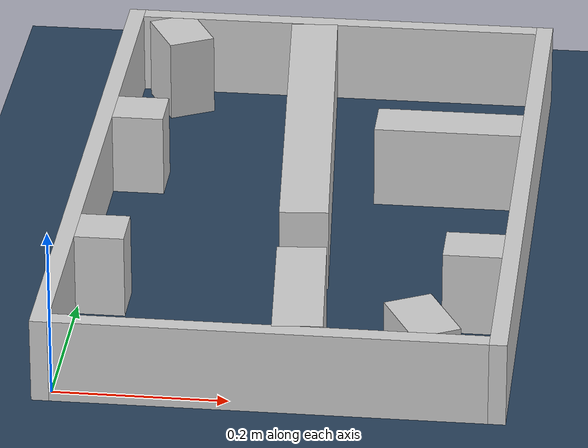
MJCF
<?xml version="1.0" ?>
<mujoco model="generated_real_template">
  <compiler angle="degree"/>
  <option timestep="0.002" integrator="implicitfast" iterations="100" cone="elliptic"/>
  <default>
    <geom density="1"/>
  </default>
  <asset>
    <texture builtin="gradient" height="3072" rgb1="0.3 0.5 0.7" rgb2="0 0 0" type="skybox" width="512"/>
    <texture builtin="checker" height="300" mark="edge" markrgb="0.8 0.8 0.8" name="groundplane" rgb1="0.2 0.3 0.4" rgb2="0.1 0.2 0.3" type="2d" width="300"/>
    <material name="groundplane" reflectance="0.2" texrepeat="5 5" texture="groundplane" texuniform="true"/>
  </asset>
  <worldbody>
    <light dir="0 0 -1" directional="true" pos="0 0 1.5"/>
    <geom name="floor" type="plane" condim="4" friction="0.5 0.005 0.001" material="groundplane" size="0 0 0.05"/>
    <body name="walls">
      <geom name="wall_boundary_left" type="box" condim="4" friction="1.0 0.005 0.0001" rgba="0.8 0.8 0.8 1" pos="-0.010000 0.387500 0.050000" euler="0 0 0.000000" size="0.010000 0.407500 0.050000"/>
      <geom name="wall_boundary_right" type="box" condim="4" friction="1.0 0.005 0.0001" rgba="0.8 0.8 0.8 1" pos="0.500000 0.387500 0.050000" euler="0 0 0.000000" size="0.010000 0.407500 0.050000"/>
      <geom name="wall_boundary_bottom" type="box" condim="4" friction="1.0 0.005 0.0001" rgba="0.8 0.8 0.8 1" pos="0.245000 -0.010000 0.050000" euler="0 0 0.000000" size="0.245000 0.010000 0.050000"/>
      <geom name="wall_boundary_top" type="box" condim="4" friction="1.0 0.005 0.0001" rgba="0.8 0.8 0.8 1" pos="0.245000 0.785000 0.050000" euler="0 0 0.000000" size="0.245000 0.010000 0.050000"/>
      <geom name="wall_inner_1_1" type="box" condim="4" friction="1.0 0.005 0.0001" rgba="0.8 0.8 0.8 1" pos="0.028628 0.211965 0.050000" euler="0 0 0.000000" size="0.028628 0.028500 0.050000"/>
      <geom name="wall_inner_1_2" type="box" condim="4" friction="1.0 0.005 0.0001" rgba="0.8 0.8 0.8 1" pos="0.456165 0.211965 0.050000" euler="0 0 0.000000" size="0.033835 0.028500 0.050000"/>
      <geom name="wall_inner_2_1" type="box" condim="4" friction="1.0 0.005 0.0001" rgba="0.8 0.8 0.8 1" pos="0.030713 0.520487 0.050000" euler="0 0 0.000000" size="0.030713 0.028500 0.050000"/>
      <geom name="wall_inner_2_2" type="box" condim="4" friction="1.0 0.005 0.0001" rgba="0.8 0.8 0.8 1" pos="0.402823 0.520487 0.050000" euler="0 0 0.000000" size="0.087177 0.028500 0.050000"/>
      <geom name="wall_inner_3_1" type="box" condim="4" friction="1.0 0.005 0.0001" rgba="0.8 0.8 0.8 1" pos="0.268892 0.093021 0.050000" euler="0 0 94.554650" size="0.093316 0.028500 0.050000"/>
      <geom name="wall_inner_3_2" type="box" condim="4" friction="1.0 0.005 0.0001" rgba="0.8 0.8 0.8 1" pos="0.234672 0.522596 0.050000" euler="0 0 94.554650" size="0.253203 0.028500 0.050000"/>
      <geom name="wall_inner_4_1" type="box" condim="4" friction="1.0 0.005 0.0001" rgba="0.8 0.8 0.8 1" pos="0.052250 0.741767 0.050000" euler="0 0 -62.919665" size="0.037325 0.028500 0.050000"/>
      <geom name="wall_inner_4_2" type="box" condim="4" friction="1.0 0.005 0.0001" rgba="0.8 0.8 0.8 1" pos="0.411586 0.038968 0.050000" euler="0 0 -62.919665" size="0.043766 0.028500 0.050000"/>
    </body>
  </worldbody>
</mujoco>
